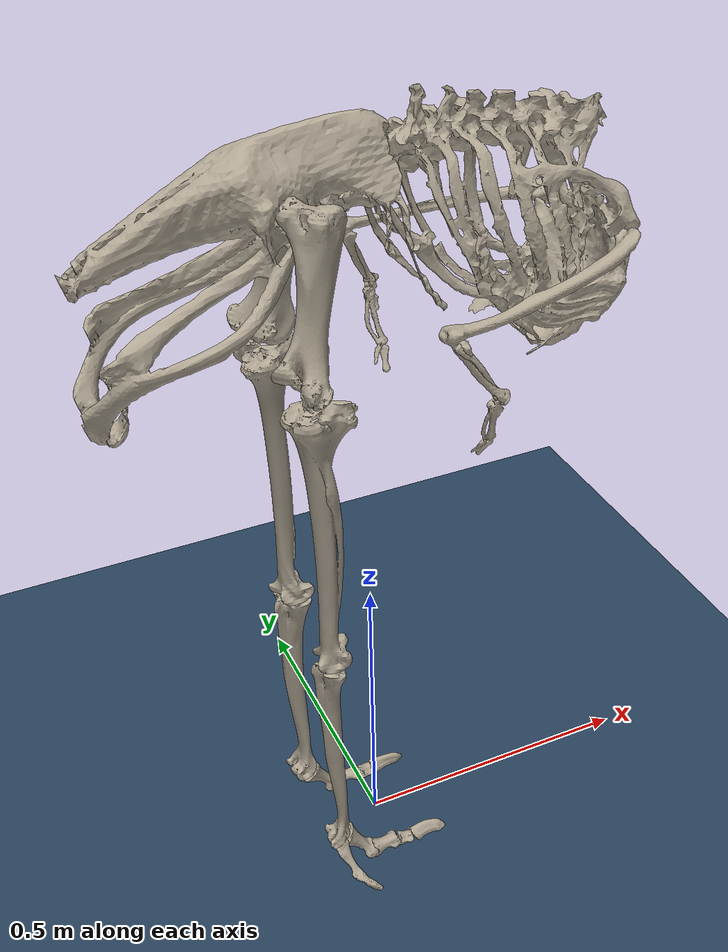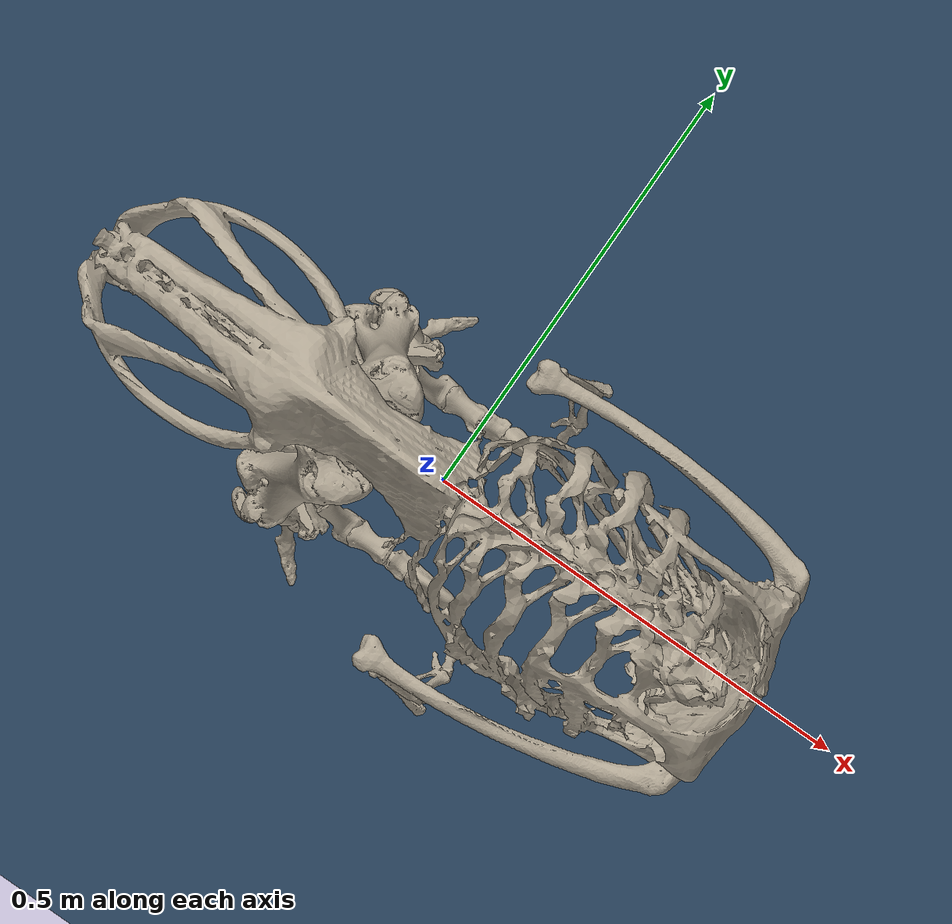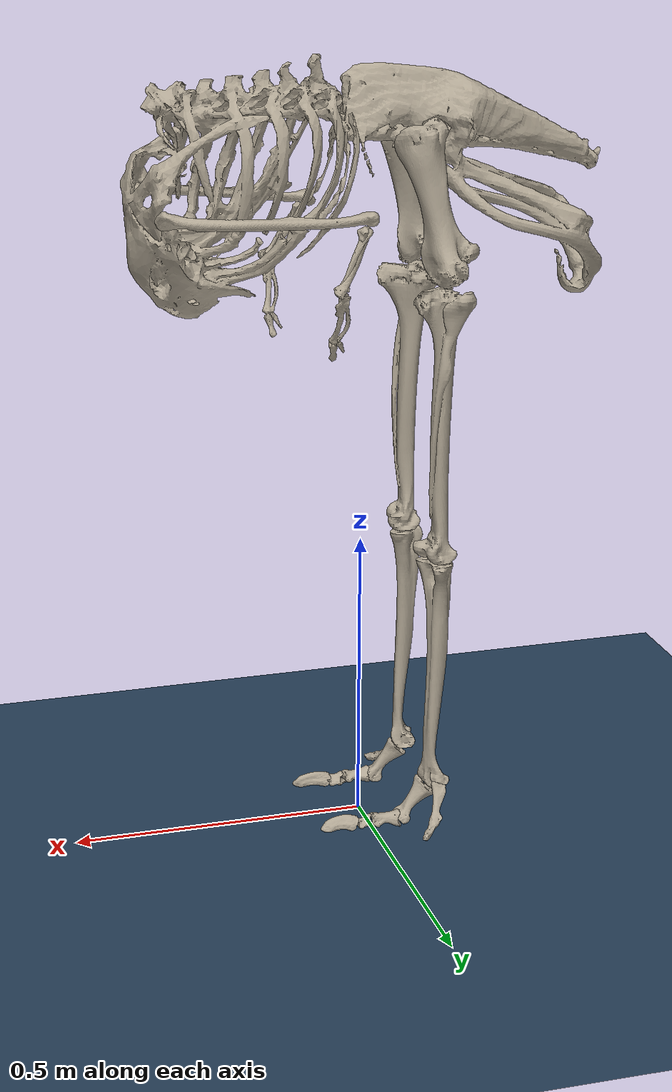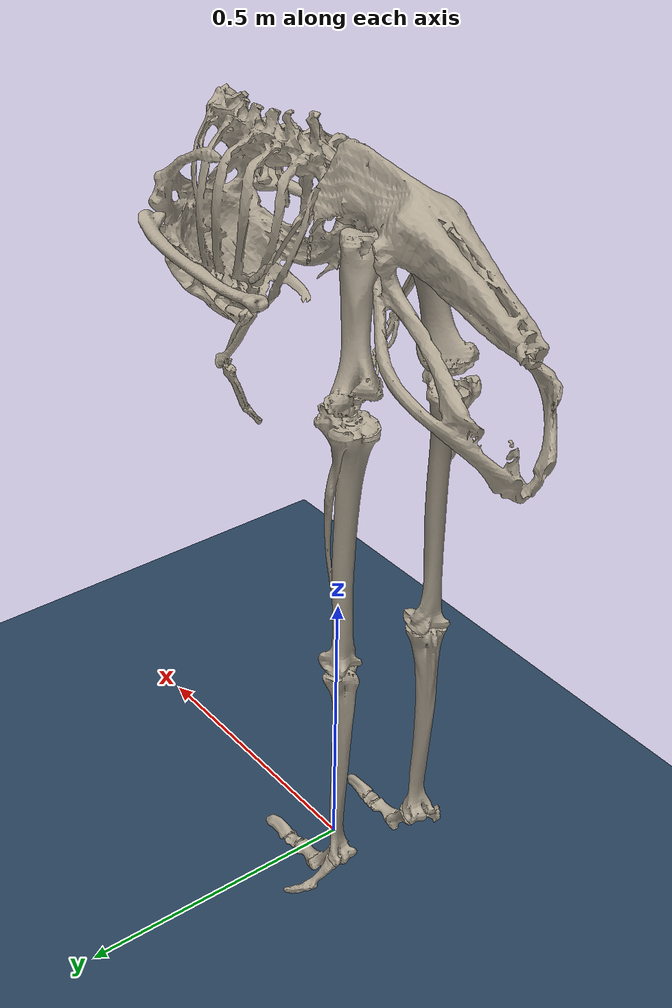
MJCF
<mujoco model="ostrich_legs_torque scene">
  <include file="ostrich_legs_torque.xml"/>

  <visual>
    <headlight ambient="0.4 0.4 0.4" diffuse="0.8 0.8 0.8" specular="0.1 0.1 0.1"/>
    <rgba haze="0.15 0.25 0.35 1"/>
    <global azimuth="140" elevation="-20" offwidth="3840" offheight="2160"/>
    <quality shadowsize="8192" offsamples="24"/>
    <map znear="0.01"/>
  </visual>

  <asset>
    <texture type="skybox" builtin="gradient" rgb1="0.3 0.5 0.7" rgb2="0 0 0" width="512" height="512"/>
    <texture type="2d" name="groundplane" builtin="checker" mark="edge" rgb1="0.2 0.3 0.4" rgb2="0.1 0.2 0.3"
      markrgb="0.8 0.8 0.8" width="300" height="300"/>
    <material name="groundplane" texture="groundplane" texuniform="true" texrepeat="5 5" reflectance="0.2"/>
  </asset>

  <worldbody>
    <light pos="0 0 4" dir="0 0 -1" directional="true"/>
    <geom name="floor" type="plane" size="0 0 0.05" material="groundplane" contype="1" conaffinity="1" friction="0.7"
      solref="0.015 1" solimp="0.95 0.99 0.003"/>
  </worldbody>
</mujoco>

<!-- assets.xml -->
<mujoco>
  <asset>
    <material name="bone" reflectance="1" shininess="0" specular="0" rgba="0.68 0.64 0.57 1"/>
    <mesh name="pelvis" file="pelvis.stl"/>
    <mesh name="r_femur" file="r_femur.stl"/>
    <mesh name="r_tibiotarsus" file="r_tibiotarsus.stl"/>
    <mesh name="r_tarsometatarsus" file="r_tarsometatarsus.stl"/>
    <mesh name="r_phalanx1" file="r_phalanx1.stl"/>
    <mesh name="r_phalanx2" file="r_phalanx2.stl"/>
    <mesh name="r_phalanx3" file="r_phalanx3.stl"/>
    <mesh name="r_phalanx4" file="r_phalanx4.stl"/>
    <mesh name="r_thumb" file="r_thumb.stl"/>
    <mesh name="l_femur" file="l_femur.stl"/>
    <mesh name="l_tibiotarsus" file="l_tibiotarsus.stl"/>
    <mesh name="l_tarsometatarsus" file="l_tarsometatarsus.stl"/>
    <mesh name="l_phalanx1" file="l_phalanx1.stl"/>
    <mesh name="l_phalanx2" file="l_phalanx2.stl"/>
    <mesh name="l_phalanx3" file="l_phalanx3.stl"/>
    <mesh name="l_phalanx4" file="l_phalanx4.stl"/>
    <mesh name="l_thumb" file="l_thumb.stl"/>
    <mesh name="ribcage" file="ribcage.stl"/>
    <mesh name="vertebra1" file="vertebra1.stl"/>
    <mesh name="vertebra2" file="vertebra2.stl"/>
    <mesh name="vertebra3" file="vertebra3.stl"/>
    <mesh name="vertebra4" file="vertebra4.stl"/>
    <mesh name="vertebra5" file="vertebra5.stl"/>
    <mesh name="vertebra6" file="vertebra6.stl"/>
    <mesh name="vertebra7" file="vertebra7.stl"/>
    <mesh name="vertebra8" file="vertebra8.stl"/>
    <mesh name="vertebra9" file="vertebra9.stl"/>
    <mesh name="vertebra10" file="vertebra10.stl"/>
    <mesh name="vertebra11" file="vertebra11.stl"/>
    <mesh name="vertebra12" file="vertebra12.stl"/>
    <mesh name="vertebra13" file="vertebra13.stl"/>
    <mesh name="vertebra14" file="vertebra14.stl"/>
    <mesh name="vertebra15" file="vertebra15.stl"/>
    <mesh name="vertebra16" file="vertebra16.stl"/>
    <mesh name="vertebra17" file="vertebra17.stl"/>
    <mesh name="head" file="head.stl"/>
    <mesh name="r_humerus" file="r_humerus.stl"/>
    <mesh name="r_ulna" file="r_ulna.stl"/>
    <mesh name="r_radius" file="r_radius.stl"/>
    <mesh name="r_hand" file="r_hand.stl"/>
    <mesh name="l_humerus" file="l_humerus.stl"/>
    <mesh name="l_ulna" file="l_ulna.stl"/>
    <mesh name="l_radius" file="l_radius.stl"/>
    <mesh name="l_hand" file="l_hand.stl"/>
  </asset>
</mujoco>

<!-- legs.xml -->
<mujoco>
  <geom name="r_ilfb_hip" class="wrapping" size="0.095 0.25" pos="-0.05809 -0.0736 0.09738"
    quat="0.7788 0.4197 0.4354 0.1669"/>
  <geom name="l_ilfb_hip" class="wrapping" size="0.095 0.25" pos="-0.05809 0.0508 0.09738"
    quat="0.4197 0.7788 -0.1669 -0.4354"/>
  <geom name="r_pifm_l_hip" group="4" class="wrapping" size="0.19 0.25" pos="-0.1512 -0.1114 0.2303"
    quat="0.6167 0.7451 0.1913 -0.1673"/>
  <geom name="l_pifm_l_hip" group="4" class="wrapping" size="0.19 0.25" pos="-0.1512 0.0886 0.2303"
    quat="0.7451 0.6167 0.1673 -0.1913"/>
  <geom name="r_cfp_hip" class="wrapping" size="0.09 0.25" pos="-0.1675 -0.151 0.1893"
    quat="0.7276 0.6152 -0.1991 0.2291"/>
  <geom name="l_cfp_hip" class="wrapping" size="0.09 0.25" pos="-0.1675 0.1282 0.1893"
    quat="0.6151 0.7276 -0.2291 0.1991"/>
  <geom name="r_il_hip" class="wrapping" group="5" size="0.1 0.25" pos="-0.09218 -0.0914 0.09117"
    quat="-0.6082 0.3607 -0.3608 0.6081"/>
  <geom name="l_il_hip" class="wrapping" group="5" size="0.1 0.25" pos="-0.09218 0.0686 0.09117"
    quat="-0.6082 0.3607 -0.3608 0.6081"/>
  <geom name="pelvis" pos="-0.1144 -0.0114 0.136" quat="0.7422 0.6228 -0.1895 0.159" mesh="pelvis"/>
  <site name="root" pos="-0.1144 -0.0114 0.136"/>
  <site name="r_il_hip" group="5" pos="-0.1736 -0.3114 0.2176"/>
  <site name="l_il_hip" group="5" pos="-0.1736 0.2886 0.2176"/>
  <site name="r_ilfb_hip" group="5" pos="-0.1127 -0.1569 0.1063"/>
  <site name="r_cfp_hip" group="5" pos="-0.1081 -0.1654 -0.08847"/>
  <site name="l_ilfb_hip" group="5" pos="-0.1127 0.1341 0.1063"/>
  <site name="l_cfp_hip" group="5" pos="-0.1081 0.1426 -0.08846"/>
  <site name="r_ic-p1" pos="0.01568 -0.03187 0.2131"/>
  <site name="r_ila-p1" pos="-0.2215 -0.05415 0.1798"/>
  <site name="r_ilp-p1" pos="-0.3023 -0.04251 0.1352"/>
  <site name="r_amb1-p1" pos="-0.06096 -0.03867 0.09751"/>
  <site name="r_amb2-p1" pos="-0.04218 -0.0485 0.1721"/>
  <site name="r_ilfba-p1" pos="-0.2446 -0.04765 0.1424"/>
  <site name="r_ilfba-p2" pos="-0.2183 -0.0774 0.1344"/>
  <site name="r_ilfbp-p1" pos="-0.3241 -0.04243 0.1109"/>
  <site name="r_ilfbp-p2" pos="-0.287 -0.07631 0.1011"/>
  <site name="r_ife-p1" pos="-0.1724 -0.07254 0.185"/>
  <site name="r_itca-p1" pos="-0.06102 -0.03375 0.2115"/>
  <site name="r_itca-p2" pos="-0.09728 -0.05096 0.206"/>
  <site name="r_itcp-p1" pos="-0.1032 -0.03646 0.2142"/>
  <site name="r_itcp-p2" pos="-0.1187 -0.05237 0.2069"/>
  <site name="r_itcr-p1" pos="-0.0408 -0.03784 0.2043"/>
  <site name="r_itm-p1" pos="-0.0971 -0.04431 0.1885"/>
  <site name="r_itm-p2" pos="-0.09363 -0.06055 0.1898"/>
  <site name="r_ifi-p1" pos="-0.07613 -0.03691 0.1983"/>
  <site name="r_ifi-p2" pos="-0.07206 -0.05708 0.1458"/>
  <site name="r_fclp-p1" pos="-0.3836 -0.04171 0.07164"/>
  <site name="r_fclp-p2" pos="-0.3702 -0.06864 0.05611"/>
  <site name="r_fcm-p1" pos="-0.3544 -0.08104 -0.00287"/>
  <site name="r_pifm+l-p1" pos="-0.2344 -0.05796 0.04223"/>
  <site name="r_om-p1" pos="-0.2272 -0.06931 0.017"/>
  <site name="r_om-p2" pos="-0.133 -0.03939 0.07945"/>
  <site name="r_om-p3" pos="-0.1261 -0.04551 0.08951"/>
  <site name="r_isf-p1" pos="-0.1843 -0.04959 0.09013"/>
  <site name="r_cfp-p1" pos="-0.3813 -0.03673 0.06965"/>
  <site name="l_ic-p1" pos="0.01568 0.009072 0.2131"/>
  <site name="l_ila-p1" pos="-0.2215 0.03135 0.1798"/>
  <site name="l_ilp-p1" pos="-0.3023 0.01971 0.1352"/>
  <site name="l_amb1-p1" pos="-0.06096 0.01587 0.09751"/>
  <site name="l_amb2-p1" pos="-0.04218 0.0257 0.1721"/>
  <site name="l_ilfba-p1" pos="-0.2446 0.02485 0.1424"/>
  <site name="l_ilfba-p2" pos="-0.2183 0.0546 0.1344"/>
  <site name="l_ilfbp-p1" pos="-0.3241 0.01963 0.1109"/>
  <site name="l_ilfbp-p2" pos="-0.287 0.05351 0.1011"/>
  <site name="l_ife-p1" pos="-0.1724 0.04974 0.185"/>
  <site name="l_itca-p1" pos="-0.06102 0.01095 0.2115"/>
  <site name="l_itca-p2" pos="-0.09728 0.02816 0.206"/>
  <site name="l_itcp-p1" pos="-0.1032 0.01366 0.2142"/>
  <site name="l_itcp-p2" pos="-0.1187 0.02957 0.2069"/>
  <site name="l_itcr-p1" pos="-0.0408 0.01504 0.2043"/>
  <site name="l_itm-p1" pos="-0.0971 0.02151 0.1885"/>
  <site name="l_itm-p2" pos="-0.09363 0.03775 0.1899"/>
  <site name="l_ifi-p1" pos="-0.07613 0.01411 0.1983"/>
  <site name="l_ifi-p2" pos="-0.07206 0.03428 0.1458"/>
  <site name="l_fclp-p1" pos="-0.3836 0.01891 0.07164"/>
  <site name="l_fclp-p2" pos="-0.3702 0.04584 0.05611"/>
  <site name="l_fcm-p1" pos="-0.3544 0.05824 -0.002868"/>
  <site name="l_pifm+l-p1" pos="-0.2344 0.03516 0.04223"/>
  <site name="l_om-p1" pos="-0.2272 0.04651 0.017"/>
  <site name="l_om-p2" pos="-0.133 0.01659 0.07945"/>
  <site name="l_om-p3" pos="-0.1261 0.02271 0.08951"/>
  <site name="l_isf-p1" pos="-0.1843 0.02679 0.09013"/>
  <site name="l_cfp-p1" pos="-0.3813 0.01393 0.06965"/>
  <!-- right leg -->
  <body name="r_femur" pos="-0.1144 -0.0469 0.136">
    <inertial pos="0.008385 -0.03406 -0.1093" quat="0.1318 0.639 -0.7575 0.02286" mass="7.833844"
      diaginertia="0.04598 0.0452 0.003406"/>
    <joint name="r_hip_x" pos="0 0 0" axis="1 0 0" range="-0.5 0.2"/>
    <joint name="r_hip_y" pos="0 0 0" axis="0 1 0" range="-1.5 0.3"/>
    <joint name="r_hip_z" pos="0 0 0" axis="0 0 1" range="-1 0.6"/>
    <geom name="r_itc_itm_hip" class="wrapping" size="0.02 0.25" pos="0.0086 0.0067 -0.0017"
      quat="0.787 0.593 0.1359 0.1024"/>
    <geom name="r_itcr_hip" class="wrapping" size="0.02 0.25" pos="0.0395 0.003401 -0.0379"
      quat="0.787 0.593 0.1359 0.1024"/>
    <geom name="r_itcr_femur" class="wrapping" size="0.055 0.25" pos="0.0086 -0.0181 -0.0882"
      quat="0.1372 0.9758 0.1686 -0.02369"/>
    <geom name="r_deep_knee_flexors" class="wrapping" size="0.015 0.1" pos="-0.0197 -0.0799 -0.2006"
      quat="0.4657 0.7997 0.3003 0.2311"/>
    <geom name="r_femur" class="leg" quat="0.7071 0.7071 4.66e-08 2.427e-06" mesh="r_femur"/>
    <site name="r_itc_itm_hip" group="5" pos="0.1028 0.03895 -0.01095"/>
    <site name="r_itcr_hip" group="5" pos="0.1337 0.03565 -0.04714"/>
    <site name="r_ic-p2" pos="0.04007 0.0284 -0.2151"/>
    <site name="r_ila-p2" pos="0.04286 -0.08141 -0.166"/>
    <site name="r_ilp-p2" pos="0.0362 -0.107 -0.1659"/>
    <site name="r_fmtl-p1" pos="0.02641 -0.05062 -0.08096"/>
    <site name="r_fmtl-p2" pos="0.0409 -0.06183 -0.1664"/>
    <site name="r_fmtim-p1" pos="0.02044 -0.01269 -0.08193"/>
    <site name="r_fmtim-p2" pos="0.02678 2.659e-06 -0.1872"/>
    <site name="r_fmtm-p1" pos="-0.01325 -0.03101 -0.1237"/>
    <site name="r_fmtm-p2" pos="-0.01794 0.0006028 -0.2059"/>
    <site name="r_amb1-p2" pos="-0.03492 -0.01377 -0.2097"/>
    <site name="r_amb2-p2" pos="0.03086 0.01991 -0.1818"/>
    <site name="r_ife-p2" pos="0.04201 -0.0387 -0.0239"/>
    <site name="r_itca-p3" pos="0.07284 -0.0092 -0.01077"/>
    <site name="r_itca-p4" pos="0.05228 -0.03164 -0.01892"/>
    <site name="r_itcp-p3" pos="0.07366 -0.00802 -0.00221"/>
    <site name="r_itcp-p4" pos="0.0509 -0.03433 -0.01365"/>
    <site name="r_itcr-p2" pos="0.06629 -0.01056 -0.0384"/>
    <site name="r_itcr-p3" pos="0.05231 -0.0355 -0.03508"/>
    <site name="r_itm-p3" pos="0.07469 -0.004299 -0.02248"/>
    <site name="r_itm-p4" pos="0.05276 -0.0319 -0.02598"/>
    <site name="r_ifi-p3" pos="-0.00619 -0.01879 -0.05886"/>
    <site name="r_fclp-p3" pos="-0.0853 -0.1429 -0.1337"/>
    <site name="r_pifm+l-p2" pos="-0.01522 -0.05472 -0.1491"/>
    <site name="r_om-p4" pos="0.02169 -0.04932 0.005649"/>
    <site name="r_om-p5" pos="0.04177 -0.03871 0.00454"/>
    <site name="r_isf-p2" pos="0.01832 -0.05298 -0.009141"/>
    <site name="r_isf-p3" pos="0.04091 -0.04254 -0.01021"/>
    <site name="r_cfp-p2" pos="0.00346 -0.0494 -0.07167"/>
    <site name="r_gl-p1" pos="0.01405 -0.06649 -0.1919"/>
    <site name="r_gl-p2" pos="0.01349 -0.09997 -0.201"/>
    <site name="r_gim-p1" pos="-0.02829 -0.04962 -0.1587"/>
    <site name="r_gim-p2" pos="-0.04749 -0.06308 -0.189"/>
    <site name="r_tcf-p1" pos="0.001181 -0.04849 -0.2374"/>
    <site name="r_fhl-p1" pos="-0.008509 -0.0687 -0.1765"/>
    <site name="r_fhl-p2" pos="-0.01509 -0.07434 -0.1837"/>
    <site name="r_fhl-p3" pos="-0.02648 -0.07857 -0.1795"/>
    <site name="r_fpd3-p1" pos="-0.01774 -0.06824 -0.1793"/>
    <site name="r_fpd3-p2" pos="-0.025 -0.07519 -0.1793"/>
    <site name="r_fpd4-p1" pos="-0.01026 -0.07342 -0.1749"/>
    <site name="r_fpd4-p2" pos="-0.02017 -0.07668 -0.1823"/>
    <site name="r_fpd4-p3" pos="-0.02493 -0.07929 -0.1793"/>
    <site name="r_fl-p1" pos="0.02539 -0.09404 -0.2879"/>
    <body name="r_tibiotarsus" pos="9.772e-07 -0.0543 -0.2338">
      <inertial pos="0.001886 -0.002379 -0.2124" quat="-0.01647 0.6978 -0.7161 0.006417" mass="5.30291"
        diaginertia="0.1206 0.1205 0.002178"/>
      <joint name="r_knee_y" pos="0 0 0" axis="0 1 0" range="0 2"/>
      <joint name="r_knee_z" pos="0 0 0" axis="0 0 1" range="-0.5 0.5"/>
      <geom name="r_fmtim_fmtl_knee" class="wrapping" size="0.038 0.25" pos="-0.0014 -0.0093 0.0103"
        quat="0.654 0.654 -0.2688 0.2688"/>
      <geom name="r_gastroc_ankle" class="wrapping" size="0.035 0.075" pos="-0.005799 0.009006 -0.4435"
        quat="0.7071 0.7071 4.66e-08 2.427e-06"/>
      <geom name="r_fps_deep_ankle" class="wrapping" size="0.03 0.1" pos="0.003102 -0.008994 -0.4537"
        quat="0.6408 0.683 -0.2988 0.183"/>
      <geom name="r_fdl_fhl_ankle" class="wrapping" size="0.03 0.25" pos="-0.001398 -9.384e-05 -0.4501"
        quat="0.6645 0.6645 -0.2418 0.2418"/>
      <geom name="r_ambd_knee" class="wrapping" size="0.038 0.05" pos="0.025 0.0012 0.0126"
        quat="0.7071 0.7071 4.66e-08 2.427e-06"/>
      <geom name="r_ic_knee" class="wrapping" size="0.03 0.25" pos="-0.0143 0.0054 0.0098"
        quat="0.6409 0.6409 0.2988 0.2988"/>
      <geom name="r_edl_tc_ankle" class="wrapping" size="0.02 0.05" pos="0.0111 -0.0008937 -0.453"
        quat="0.68 0.7207 -0.09434 -0.09602"/>
      <geom name="r_tibiotarsus" class="leg" quat="0.7071 0.7071 4.66e-08 2.427e-06" mesh="r_tibiotarsus"/>
      <site name="r_fmtim_fmtl_knee" group="5" pos="0.06969 -0.009301 0.08063"/>
      <site name="r_gastroc_ankle" group="5" pos="-0.1058 0.009006 -0.4435"/>
      <site name="r_fps_deep_ankle" group="5" pos="-0.07234 0.00837 -0.517"/>
      <site name="r_fdl_fhl_ankle" group="5" pos="-0.078 -9.322e-05 -0.5144"/>
      <site name="r_ambd_knee" group="5" pos="0.125 0.0012 0.0126"/>
      <site name="r_ic_knee" group="5" pos="0.04998 0.082 0.009801"/>
      <site name="r_edl_tc_ankle" group="5" pos="0.1075 -0.02755 -0.454"/>
      <site name="r_ic-p3" pos="0.00922 0.01565 -0.01128"/>
      <site name="r_ila-p3" pos="0.0144 -0.02866 0.01634"/>
      <site name="r_ila-p4" pos="0.04358 -0.01832 -0.00834"/>
      <site name="r_ilp-p3" pos="0.02376 -0.041 0.0007695"/>
      <site name="r_ilp-p4" pos="0.04388 -0.02347 -0.01463"/>
      <site name="r_fmtl-p3" pos="0.03878 -0.02914 -0.02884"/>
      <site name="r_fmtim-p3" pos="0.052 -0.011 -0.014"/>
      <site name="r_fmtm-p3" pos="0.01038 0.01091 -0.01164"/>
      <site name="r_amb1-p3" pos="0.00364 0.01766 -0.01357"/>
      <site name="r_amb2-p3" pos="0.08447 -0.00453 0.00169"/>
      <site name="r_amb2-p4" pos="0.0412 -0.02664 -0.08594"/>
      <site name="r_amb2-p5" pos="0.00575 -0.0295 -0.1057"/>
      <site name="r_ilfba-p3" pos="-0.001849 -0.0336 -0.1406"/>
      <site name="r_ilfbp-p3" pos="-0.001849 -0.0336 -0.1406"/>
      <site name="r_fclp-p4" pos="-0.01369 -0.0146 -0.1197"/>
      <site name="r_fcm-p4" pos="-0.01611 -0.007458 -0.1202"/>
      <site name="r_gl-p3" pos="-0.001966 -0.07206 -0.02661"/>
      <site name="r_gl-p4" pos="-0.01765 -0.03604 -0.1598"/>
      <site name="r_gl-p5" pos="-0.02582 -0.001835 -0.3675"/>
      <site name="r_gim-p3" pos="-0.01754 -0.03541 -0.159"/>
      <site name="r_gim-p4" pos="-0.02523 -0.001275 -0.3667"/>
      <site name="r_gm-p1" pos="0.05348 0.03327 0.0342"/>
      <site name="r_gm-p2" pos="0.02616 0.03254 -0.09808"/>
      <site name="r_gm-p3" pos="-0.02631 0.004065 -0.3665"/>
      <site name="r_edl-p1" pos="0.01628 -0.006038 -0.1065"/>
      <site name="r_edl-p2" pos="0.02397 0.001504 -0.2864"/>
      <site name="r_edl-p3" pos="0.0153 0.001006 -0.419"/>
      <site name="r_tcf-p2" pos="0.01874 -0.02283 -0.02663"/>
      <site name="r_tcf-p3" pos="0.02312 -0.01127 -0.1552"/>
      <site name="r_tcf-p4" pos="0.02191 0.003006 -0.403"/>
      <site name="r_tct-p1" pos="0.0466 -0.01982 -0.04363"/>
      <site name="r_tct-p2" pos="0.02331 -0.008998 -0.155"/>
      <site name="r_tct-p3" pos="0.0212 0.006006 -0.402"/>
      <site name="r_fdl-p1" pos="-0.03149 -0.01282 -0.04311"/>
      <site name="r_fdl-p2" pos="-0.01645 -0.01218 -0.1445"/>
      <site name="r_fdl-p3" pos="-0.01492 -0.006225 -0.379"/>
      <site name="r_fhl-p4" pos="-0.01536 -0.005748 -0.1428"/>
      <site name="r_fhl-p5" pos="-0.01053 0.0002351 -0.3785"/>
      <site name="r_fp_pd3-p1" pos="-0.04937 -0.02582 0.004319"/>
      <site name="r_fp_pd3-p2" pos="-0.03999 -0.02865 -0.0713"/>
      <site name="r_fp_pd3-p3" pos="-0.01648 -0.005255 -0.3602"/>
      <site name="r_fp_pd3-p4" pos="-0.02482 0.007786 -0.4238"/>
      <site name="r_fpd3-p4" pos="-0.036 -0.01744 -0.11"/>
      <site name="r_fpd3-p5" pos="-0.02065 -0.002585 -0.3947"/>
      <site name="r_fpd3-p6" pos="-0.02272 0.0001058 -0.4305"/>
      <site name="r_fpd4-p4" pos="-0.0112 -0.02737 -0.1465"/>
      <site name="r_fpd4-p5" pos="-0.01799 -0.005835 -0.3968"/>
      <site name="r_fpd4-p6" pos="-0.0204 -0.003454 -0.4257"/>
      <site name="r_fl-p2" pos="0.04252 -0.04356 -0.08611"/>
      <site name="r_fl-p3" pos="0.01879 -0.03632 -0.2251"/>
      <site name="r_fl-p4" pos="0.01022 -0.02305 -0.3995"/>
      <site name="r_fl-p5" pos="-0.004998 -0.03351 -0.4561"/>
      <body name="r_tarsometatarsus" pos="1.488e-06 6.056e-06 -0.442">
        <inertial pos="0.002975 0.002176 -0.2295" quat="-0.003585 0.974 -0.2265 -0.002015" mass="1.037683"
          diaginertia="0.01956 0.01951 0.0002057"/>
        <joint name="r_ankle_y" axis="0 1 0" range="-2.3 0"/>
        <geom name="r_toe_flexors_deep" class="wrapping" size="0.023 0.05" pos="0.002501 0.002406 -0.4319"
          quat="0.7229 0.6807 -0.08457 -0.08303"/>
        <geom name="r_fpd4_toe" class="wrapping" size="0.023 0.05" pos="0.0002015 -0.002494 -0.4326"
          quat="0.6922 0.6922 -0.1442 -0.1442"/>
        <geom name="r_edl_toes" class="wrapping" size="0.023 0.05" pos="0.002901 0.01521 -0.4312"
          quat="0.7143 0.6994 -0.02092 -0.01218"/>
        <geom name="r_toe_flexors_superficial" class="wrapping" size="0.023 0.05" pos="-0.001999 -0.0001941 -0.4296"
          quat="0.7016 0.7105 -0.02848 -0.04751"/>
        <geom name="r_tarsometatarsus" class="leg" quat="0.7071 0.7071 4.66e-08 2.427e-06" mesh="r_tarsometatarsus"/>
        <site name="r_toe_flexors_deep" group="5" pos="-0.1947 0.02592 -0.3328"/>
        <site name="r_fpd4_toe" group="5" pos="-0.1915 0.03745 -0.4326"/>
        <site name="r_edl_toes" group="5" pos="0.1028 0.01054 -0.4299"/>
        <site name="r_toe_flexors_superficial" group="5" pos="-0.2 0.01052 -0.3"/>
        <site name="r_gl-p6" pos="-0.0359 0.002661 -0.05455"/>
        <site name="r_gl-p7" pos="-0.01602 -0.001428 -0.1625"/>
        <site name="r_gim-p5" pos="-0.03728 0.006011 -0.05387"/>
        <site name="r_gim-p6" pos="-0.01663 0.001102 -0.1623"/>
        <site name="r_gm-p4" pos="-0.03806 0.008861 -0.05337"/>
        <site name="r_gm-p5" pos="-0.0149 0.004592 -0.1622"/>
        <site name="r_edl-p4" pos="0.019 -0.001949 -0.034"/>
        <site name="r_edl-p5" pos="0.01787 -0.001639 -0.07374"/>
        <site name="r_edl-p6" pos="0.02376 0.001024 -0.3198"/>
        <site name="r_edl-p7" pos="0.02491 0.002475 -0.3725"/>
        <site name="r_tcf-p5" pos="0.03272 0.01029 -0.04332"/>
        <site name="r_tcf-p6" pos="0.02092 0.009801 -0.09836"/>
        <site name="r_tct-p4" pos="0.03329 0.01319 -0.04262"/>
        <site name="r_tct-p5" pos="0.02082 0.01253 -0.09834"/>
        <site name="r_fdl-p4" pos="-0.0212 -0.01152 -0.0393"/>
        <site name="r_fdl-p5" pos="-0.01588 -0.007617 -0.2353"/>
        <site name="r_fdl-p6" pos="-0.001729 -0.0002247 -0.3865"/>
        <site name="r_fdl-p7" pos="-0.007408 0.005006 -0.4068"/>
        <site name="r_fhl-p6" pos="-0.02219 -0.008969 -0.03922"/>
        <site name="r_fhl-p7" pos="-0.01661 -0.003807 -0.2355"/>
        <site name="r_fhl-p8" pos="-0.003479 0.004055 -0.3865"/>
        <site name="r_fhl-p9" pos="-0.007228 0.006118 -0.407"/>
        <site name="r_fp_pd3-p5" pos="-0.02758 -0.002199 -0.04894"/>
        <site name="r_fp_pd3-p6" pos="-0.01949 -0.001087 -0.2373"/>
        <site name="r_fp_pd3-p7" pos="-0.005729 0.007725 -0.3969"/>
        <site name="r_fp_pd3-p8" pos="-0.017 0.007005 -0.405"/>
        <site name="r_fpd3-p7" pos="-0.02736 0.01532 -0.04498"/>
        <site name="r_fpd3-p8" pos="-0.02518 0.01601 -0.08081"/>
        <site name="r_fpd3-p9" pos="-0.02121 0.008293 -0.2383"/>
        <site name="r_fpd3-p10" pos="-0.004179 0.01364 -0.3989"/>
        <site name="r_fpd3-p11" pos="-0.0161 0.01178 -0.405"/>
        <site name="r_fpd4-p7" pos="-0.02945 -0.009419 -0.04521"/>
        <site name="r_fpd4-p8" pos="-0.02588 -0.004849 -0.08225"/>
        <site name="r_fpd4-p9" pos="-0.02009 -0.003687 -0.237"/>
        <site name="r_fpd4-p10" pos="-0.002959 -0.005694 -0.4004"/>
        <site name="r_fl-p6" pos="-0.00854 -0.03128 -0.03975"/>
        <site name="r_fl-p7" pos="-0.01516 -0.01417 -0.09679"/>
        <site name="r_fl-p8" pos="-0.02342 0.009802 -0.1306"/>
        <site name="r_fl-p9" pos="-0.0218 0.002563 -0.2375"/>
        <site name="r_fl-p10" pos="-0.005559 0.01117 -0.3986"/>
        <body name="r_pes" pos="1.434e-06 5.837e-06 -0.426">
          <inertial pos="0.06599 -0.005481 -0.05537" quat="-0.1785 0.7799 -0.1385 0.5837" mass="0.582115"
            diaginertia="0.002102 0.001931 0.0003652"/>
          <joint name="r_mtp_y" pos="0 0 0" axis="0 1 0" range="-0.3 2"/>
          <geom name="r_phalanx1" class="leg" quat="0.6513 0.6513 0.2754 -0.2754" mesh="r_phalanx1"/>
          <geom name="r_phalanx2" class="leg" pos="-0.035 7.682e-07 -0.065" quat="0.7071 0.7071 4.66e-08 2.427e-06"
            mesh="r_phalanx2"/>
          <geom name="r_phalanx3" class="leg" pos="-0.035 7.682e-07 -0.065" quat="0.7071 0.7071 4.66e-08 2.427e-06"
            mesh="r_phalanx3"/>
          <geom name="r_phalanx4" class="leg" pos="-0.04 7.507e-07 -0.065" quat="0.7071 0.7071 4.66e-08 2.427e-06"
            mesh="r_phalanx4"/>
          <geom name="r_thumb" class="leg" quat="0.5836 0.5836 0.3993 -0.3993" mesh="r_thumb"/>
          <site name="r_fpd4-p12" pos="-0.0074 -0.02453 -0.02829"/>
          <site name="r_fpd4-p13" pos="0.00344 -0.03246 -0.04105"/>
          <site name="r_fpd4-p14" pos="0.01464 -0.04732 -0.07"/>
          <site name="r_fpd4-p15" pos="0.04209 -0.07435 -0.08281"/>
          <site name="r_edl-p8" pos="0.02633 -0.00852 0.02126"/>
          <site name="r_edl-p9" pos="0.05763 0.006261 -0.05815"/>
          <site name="r_edl-p10" pos="0.1071 0.007131 -0.06189"/>
          <site name="r_edl-p11" pos="0.1188 0.003981 -0.06185"/>
          <site name="r_fdl-p8" pos="0.02411 -0.003759 -0.055"/>
          <site name="r_fdl-p9" pos="0.04896 -0.0008987 -0.0827"/>
          <site name="r_fdl-p10" pos="0.07061 -0.0008885 -0.08751"/>
          <site name="r_fdl-p11" pos="0.1118 0.001892 -0.08555"/>
          <site name="r_fdl-p12" pos="0.1509 0.002532 -0.08637"/>
          <site name="r_fdl-p13" pos="0.1845 0.002752 -0.07934"/>
          <site name="r_fhl-p10" pos="0.02411 0.008721 -0.0523"/>
          <site name="r_fhl-p11" pos="0.04854 0.002671 -0.08336"/>
          <site name="r_fhl-p12" pos="0.07094 0.004031 -0.08795"/>
          <site name="r_fhl-p13" pos="0.112 0.002422 -0.08597"/>
          <site name="r_fhl-p14" pos="0.1513 0.0002617 -0.08648"/>
          <site name="r_fhl-p15" pos="0.1857 -4.824e-05 -0.08132"/>
          <site name="r_fp_pd3-p9" pos="0.02633 0.007961 -0.05041"/>
          <site name="r_fp_pd3-p10" pos="0.05383 0.001141 -0.08533"/>
          <site name="r_fp_pd3-p11" pos="0.0672 0.0001914 -0.08555"/>
          <site name="r_fp_pd3-p12" pos="0.111 -0.002498 -0.08313"/>
          <site name="r_fp_pd3-p13" pos="0.1396 -0.001948 -0.08303"/>
          <site name="r_fp_pd3-p14" pos="0.1547 -0.001478 -0.0817"/>
          <site name="r_fpd3-p12" pos="0.02411 0.01366 -0.05166"/>
          <site name="r_fpd3-p13" pos="0.05338 0.006601 -0.08749"/>
          <site name="r_fpd3-p14" pos="0.06833 0.005141 -0.08763"/>
          <site name="r_fpd3-p15" pos="0.1113 0.001922 -0.08342"/>
          <site name="r_fl-p12" pos="0.02411 0.01108 -0.055"/>
          <site name="r_fl-p13" pos="0.08668 0.003311 -0.08738"/>
          <site name="r_fl-p14" pos="0.1029 0.003132 -0.0861"/>
          <site name="r_fl-p15" pos="0.1459 -0.0007383 -0.08404"/>
        </body>
      </body>
    </body>
  </body>
  <!-- left leg -->
  <body name="l_femur" pos="-0.1144 0.0241 0.136">
    <inertial pos="0.008384 0.03406 -0.1093" quat="-0.02287 0.7575 -0.639 -0.1318" mass="7.833844"
      diaginertia="0.04598 0.0452 0.003406"/>
    <joint name="l_hip_x" pos="0 0 0" axis="1 0 0" range="-0.2 0.5"/>
    <joint name="l_hip_y" pos="0 0 0" axis="0 1 0" range="-1.5 0.3"/>
    <joint name="l_hip_z" pos="0 0 0" axis="0 0 1" range="-0.6 1"/>
    <geom name="l_itc_itm_hip" class="wrapping" size="0.02 0.25" pos="0.0086 -0.0067 -0.0017"
      quat="0.593 0.787 -0.1024 -0.1359"/>
    <geom name="l_itcr_hip" class="wrapping" size="0.02 0.25" pos="0.0395 -0.003399 -0.0379"
      quat="0.593 0.787 -0.1024 -0.1359"/>
    <geom name="l_itcr_femur" class="wrapping" size="0.055 0.25" pos="0.0086 0.0181 -0.0882"
      quat="0.9758 0.1372 0.02369 -0.1686"/>
    <geom name="l_deep_knee_flexors" class="wrapping" size="0.015 0.1" pos="-0.0197 0.0799 -0.2006"
      quat="0.7997 0.4657 -0.2311 -0.3003"/>
    <geom name="l_femur" class="leg" quat="0.7071 0.7071 4.66e-08 2.427e-06" mesh="l_femur"/>
    <site name="l_itc_itm_hip" pos="0.1028 -0.03895 -0.01095"/>
    <site name="l_itcr_hip" pos="0.1337 -0.03564 -0.04715"/>
    <site name="l_ic-p2" pos="0.04007 -0.0284 -0.2151"/>
    <site name="l_ila-p2" pos="0.04286 0.08141 -0.166"/>
    <site name="l_ilp-p2" pos="0.0362 0.107 -0.1659"/>
    <site name="l_fmtl-p1" pos="0.02641 0.05062 -0.08096"/>
    <site name="l_fmtl-p2" pos="0.0409 0.06183 -0.1664"/>
    <site name="l_fmtim-p1" pos="0.02044 0.01269 -0.08193"/>
    <site name="l_fmtim-p2" pos="0.02678 2.659e-06 -0.1872"/>
    <site name="l_fmtm-p1" pos="-0.01325 0.03101 -0.1237"/>
    <site name="l_fmtm-p2" pos="-0.01794 -0.0005972 -0.2059"/>
    <site name="l_amb1-p2" pos="-0.03492 0.01377 -0.2097"/>
    <site name="l_amb2-p2" pos="0.03086 -0.01991 -0.1818"/>
    <site name="l_ife-p2" pos="0.04201 0.0387 -0.0239"/>
    <site name="l_itca-p3" pos="0.07284 0.0092 -0.01077"/>
    <site name="l_itca-p4" pos="0.05228 0.03164 -0.01892"/>
    <site name="l_itcp-p3" pos="0.07366 0.00802 -0.00221"/>
    <site name="l_itcp-p4" pos="0.0509 0.03433 -0.01365"/>
    <site name="l_itcr-p2" pos="0.06629 0.01056 -0.0384"/>
    <site name="l_itcr-p3" pos="0.05231 0.0355 -0.03508"/>
    <site name="l_itm-p3" pos="0.07469 0.004301 -0.02248"/>
    <site name="l_itm-p4" pos="0.05276 0.0319 -0.02598"/>
    <site name="l_ifi-p3" pos="-0.00619 0.01879 -0.05886"/>
    <site name="l_fclp-p3" pos="-0.0853 0.1429 -0.1337"/>
    <site name="l_pifm+l-p2" pos="-0.01522 0.05472 -0.1491"/>
    <site name="l_om-p4" pos="0.02169 0.04932 0.005651"/>
    <site name="l_om-p5" pos="0.04177 0.03871 0.004541"/>
    <site name="l_isf-p2" pos="0.01832 0.05298 -0.009139"/>
    <site name="l_isf-p3" pos="0.04091 0.04254 -0.01021"/>
    <site name="l_cfp-p2" pos="0.00346 0.0494 -0.07167"/>
    <site name="l_gl-p1" pos="0.01405 0.06649 -0.1919"/>
    <site name="l_gl-p2" pos="0.01349 0.09997 -0.201"/>
    <site name="l_gim-p1" pos="-0.02829 0.04962 -0.1587"/>
    <site name="l_gim-p2" pos="-0.04749 0.06308 -0.189"/>
    <site name="l_tcf-p1" pos="0.001181 0.04849 -0.2374"/>
    <site name="l_fhl-p1" pos="-0.00851 0.0687 -0.1765"/>
    <site name="l_fhl-p2" pos="-0.01509 0.07434 -0.1837"/>
    <site name="l_fhl-p3" pos="-0.02648 0.07857 -0.1794"/>
    <site name="l_fpd3-p1" pos="-0.01774 0.06824 -0.1793"/>
    <site name="l_fpd3-p2" pos="-0.025 0.07519 -0.1793"/>
    <site name="l_fpd4-p1" pos="-0.01026 0.07342 -0.1749"/>
    <site name="l_fpd4-p2" pos="-0.02017 0.07668 -0.1823"/>
    <site name="l_fpd4-p3" pos="-0.02493 0.07929 -0.1793"/>
    <site name="l_fl-p1" pos="0.02539 0.09404 -0.2879"/>
    <body name="l_tibiotarsus" pos="5.972e-07 0.0543 -0.2338">
      <inertial pos="0.001886 0.002385 -0.2124" quat="-0.006427 0.7161 -0.6978 0.01646" mass="5.30291"
        diaginertia="0.1206 0.1205 0.002178"/>
      <joint name="l_knee_y" pos="0 0 0" axis="0 1 0" range="0 2"/>
      <joint name="l_knee_z" pos="0 0 0" axis="0 0 1" range="-0.5 0.5"/>
      <geom name="l_fmtim_fmtl_knee" class="wrapping" size="0.038 0.25" pos="-0.0014 0.0093 0.0103"
        quat="0.654 0.654 -0.2688 0.2688"/>
      <geom name="l_gastroc_ankle" class="wrapping" size="0.035 0.075" pos="-0.005798 -0.008994 -0.4435"
        quat="0.7071 0.7071 4.66e-08 2.427e-06"/>
      <geom name="l_fps_deep_ankle" class="wrapping" size="0.03 0.1" pos="0.003101 0.009006 -0.4537"
        quat="0.683 0.6408 -0.183 0.2988"/>
      <geom name="l_fdl_fhl_ankle" class="wrapping" size="0.03 0.25" pos="-0.001398 0.0001062 -0.4501"
        quat="0.6645 0.6645 -0.2418 0.2418"/>
      <geom name="l_ambd_knee" class="wrapping" size="0.038 0.05" pos="0.025 -0.0012 0.0126"
        quat="0.7071 0.7071 4.66e-08 2.427e-06"/>
      <geom name="l_ic_knee" class="wrapping" size="0.03 0.25" pos="-0.0143 -0.0054 0.0098"
        quat="0.6409 0.6409 -0.2988 -0.2988"/>
      <geom name="l_edl_tc_ankle" class="wrapping" size="0.02 0.05" pos="0.0111 0.0009062 -0.453"
        quat="0.7207 0.68 0.09603 0.09434"/>
      <geom name="l_tibiotarsus" class="leg" quat="0.7071 0.7071 4.66e-08 2.427e-06" mesh="l_tibiotarsus"/>
      <site name="l_fmtim_fmtl_knee" group="5" pos="0.06969 0.009299 0.08063"/>
      <site name="l_gastroc_ankle" group="5" pos="-0.1058 -0.008994 -0.4435"/>
      <site name="l_fps_deep_ankle" group="5" pos="-0.07234 -0.008356 -0.517"/>
      <site name="l_fdl_fhl_ankle" group="5" pos="-0.078 0.0001068 -0.5144"/>
      <site name="l_ambd_knee" group="5" pos="0.125 -0.0012 0.0126"/>
      <site name="l_ic_knee" group="5" pos="0.04998 -0.082 0.009799"/>
      <site name="l_edl_tc_ankle" group="5" pos="0.1075 0.02757 -0.454"/>
      <site name="l_ic-p3" pos="0.00922 -0.01565 -0.01128"/>
      <site name="l_ila-p3" pos="0.0144 0.02866 0.01634"/>
      <site name="l_ila-p4" pos="0.04358 0.01832 -0.00834"/>
      <site name="l_ilp-p3" pos="0.02376 0.041 0.0007706"/>
      <site name="l_ilp-p4" pos="0.04388 0.02347 -0.01463"/>
      <site name="l_fmtl-p3" pos="0.03878 0.02914 -0.02884"/>
      <site name="l_fmtim-p3" pos="0.052 0.011 -0.014"/>
      <site name="l_fmtm-p3" pos="0.01038 -0.01091 -0.01164"/>
      <site name="l_amb1-p3" pos="0.00364 -0.01766 -0.01357"/>
      <site name="l_amb2-p3" pos="0.08447 0.00453 0.00169"/>
      <site name="l_amb2-p4" pos="0.0412 0.02664 -0.08594"/>
      <site name="l_amb2-p5" pos="0.00575 0.0295 -0.1057"/>
      <site name="l_ilfba-p3" pos="-0.00185 0.0336 -0.1406"/>
      <site name="l_ilfbp-p3" pos="-0.00185 0.0336 -0.1406"/>
      <site name="l_fclp-p4" pos="-0.01369 0.0146 -0.1197"/>
      <site name="l_fcm-p4" pos="-0.01611 0.007462 -0.1202"/>
      <site name="l_gl-p3" pos="-0.001966 0.07206 -0.02661"/>
      <site name="l_gl-p4" pos="-0.01765 0.03604 -0.1598"/>
      <site name="l_gl-p5" pos="-0.02582 0.001845 -0.3675"/>
      <site name="l_gim-p3" pos="-0.01754 0.03541 -0.159"/>
      <site name="l_gim-p4" pos="-0.02523 0.001285 -0.3667"/>
      <site name="l_gm-p1" pos="0.05348 -0.03327 0.0342"/>
      <site name="l_gm-p2" pos="0.02616 -0.03254 -0.09808"/>
      <site name="l_gm-p3" pos="-0.02631 -0.004055 -0.3665"/>
      <site name="l_edl-p1" pos="0.01628 0.006041 -0.1065"/>
      <site name="l_edl-p2" pos="0.02397 -0.001496 -0.2864"/>
      <site name="l_edl-p3" pos="0.0153 -0.0009942 -0.419"/>
      <site name="l_tcf-p2" pos="0.01874 0.02283 -0.02663"/>
      <site name="l_tcf-p3" pos="0.02312 0.01127 -0.1552"/>
      <site name="l_tcf-p4" pos="0.02191 -0.002994 -0.403"/>
      <site name="l_tct-p1" pos="0.0466 0.01982 -0.04363"/>
      <site name="l_tct-p2" pos="0.02331 0.009002 -0.155"/>
      <site name="l_tct-p3" pos="0.0212 -0.005994 -0.402"/>
      <site name="l_fdl-p1" pos="-0.03149 0.01282 -0.04311"/>
      <site name="l_fdl-p2" pos="-0.01645 0.01218 -0.1445"/>
      <site name="l_fdl-p3" pos="-0.01492 0.006235 -0.379"/>
      <site name="l_fhl-p4" pos="-0.01536 0.005752 -0.1428"/>
      <site name="l_fhl-p5" pos="-0.01053 -0.0002248 -0.3785"/>
      <site name="l_fp_pd3-p1" pos="-0.04937 0.02582 0.00432"/>
      <site name="l_fp_pd3-p2" pos="-0.03999 0.02865 -0.0713"/>
      <site name="l_fp_pd3-p3" pos="-0.01648 0.005265 -0.3602"/>
      <site name="l_fp_pd3-p4" pos="-0.02482 -0.007774 -0.4238"/>
      <site name="l_fpd3-p4" pos="-0.036 0.01744 -0.11"/>
      <site name="l_fpd3-p5" pos="-0.02065 0.002595 -0.3947"/>
      <site name="l_fpd3-p6" pos="-0.02272 -9.418e-05 -0.4305"/>
      <site name="l_fpd4-p4" pos="-0.0112 0.02737 -0.1465"/>
      <site name="l_fpd4-p5" pos="-0.01799 0.005845 -0.3968"/>
      <site name="l_fpd4-p6" pos="-0.0204 0.003466 -0.4257"/>
      <site name="l_fl-p2" pos="0.04252 0.04356 -0.08611"/>
      <site name="l_fl-p3" pos="0.01879 0.03632 -0.2251"/>
      <site name="l_fl-p4" pos="0.01022 0.02307 -0.3995"/>
      <site name="l_fl-p5" pos="-0.004999 0.03353 -0.4561"/>
      <body name="l_tarsometatarsus" pos="1.488e-06 6.056e-06 -0.442">
        <inertial pos="0.002975 -0.00217 -0.2295" quat="0.003572 0.974 0.2265 -0.002012" mass="1.037683"
          diaginertia="0.01956 0.01951 0.0002057"/>
        <joint name="l_ankle_y" axis="0 1 0" range="-2.3 0"/>
        <geom name="l_toe_flexors_superficial" class="wrapping" size="0.023 0.05" pos="-0.001999 0.0002059 -0.4296"
          quat="0.7016 0.7105 -0.02848 -0.04751"/>
        <geom name="l_toe_flexors_deep" class="wrapping" size="0.023 0.05" pos="0.002501 -0.002394 -0.4319"
          quat="0.6807 0.7229 0.08303 0.08457"/>
        <geom name="l_toe_extensors_superficial" class="wrapping" size="0.023 0.05" pos="0.015 -0.0004943 -0.41"
          quat="0.7016 0.7105 -0.02848 -0.04751"/>
        <geom name="l_fpd4_toe" class="wrapping" size="0.023 0.05" pos="0.0002014 0.002506 -0.4326"
          quat="0.6922 0.6922 0.1442 0.1442"/>
        <geom name="l_edl_toes" class="wrapping" size="0.023 0.05" pos="0.002901 -0.01519 -0.4312"
          quat="0.6994 0.7143 0.01219 0.02092"/>
        <geom name="l_tarsometatarsus" class="leg" quat="0.7071 0.7071 4.66e-08 2.427e-06" mesh="l_tarsometatarsus"/>
        <site name="l_toe_flexors_superficial" group="5" pos="-0.2 -0.01051 -0.3"/>
        <site name="l_extensors_site" group="5" pos="0.1 4.461e-06 -0.3"/>
        <site name="l_toe_flexors_deep" group="5" pos="-0.1947 -0.02591 -0.3328"/>
        <site name="l_fpd4_toe" group="5" pos="-0.09148 -0.03743 -0.4326"/>
        <site name="l_edl_toes" group="5" pos="0.1028 -0.01053 -0.4299"/>
        <site name="l_gl-p6" pos="-0.0359 -0.002659 -0.05455"/>
        <site name="l_gl-p7" pos="-0.01602 0.001432 -0.1625"/>
        <site name="l_gim-p5" pos="-0.03728 -0.006009 -0.05387"/>
        <site name="l_gim-p6" pos="-0.01663 -0.001098 -0.1623"/>
        <site name="l_gm-p4" pos="-0.03806 -0.008859 -0.05337"/>
        <site name="l_gm-p5" pos="-0.0149 -0.004588 -0.1622"/>
        <site name="l_edl-p4" pos="0.019 0.001951 -0.034"/>
        <site name="l_edl-p5" pos="0.01787 0.001641 -0.07374"/>
        <site name="l_edl-p6" pos="0.02376 -0.001016 -0.3198"/>
        <site name="l_edl-p7" pos="0.02491 -0.002465 -0.3725"/>
        <site name="l_tcf-p5" pos="0.03272 -0.01029 -0.04332"/>
        <site name="l_tcf-p6" pos="0.02092 -0.009799 -0.09836"/>
        <site name="l_tct-p4" pos="0.03329 -0.01319 -0.04262"/>
        <site name="l_tct-p5" pos="0.02082 -0.01253 -0.09834"/>
        <site name="l_fdl-p4" pos="-0.0212 0.01152 -0.0393"/>
        <site name="l_fdl-p5" pos="-0.01588 0.007623 -0.2353"/>
        <site name="l_fdl-p6" pos="-0.001729 0.0002353 -0.3865"/>
        <site name="l_fdl-p7" pos="-0.007408 -0.004994 -0.4068"/>
        <site name="l_fhl-p6" pos="-0.02219 0.00897 -0.03922"/>
        <site name="l_fhl-p7" pos="-0.01661 0.003813 -0.2355"/>
        <site name="l_fhl-p8" pos="-0.003479 -0.004045 -0.3865"/>
        <site name="l_fhl-p9" pos="-0.007228 -0.006107 -0.407"/>
        <site name="l_fp_pd3-p5" pos="-0.02758 0.002201 -0.04894"/>
        <site name="l_fp_pd3-p6" pos="-0.01949 0.001093 -0.2373"/>
        <site name="l_fp_pd3-p7" pos="-0.005729 -0.007715 -0.3969"/>
        <site name="l_fp_pd3-p8" pos="-0.017 -0.006994 -0.405"/>
        <site name="l_fpd3-p7" pos="-0.02736 -0.01532 -0.04498"/>
        <site name="l_fpd3-p8" pos="-0.02518 -0.01601 -0.08081"/>
        <site name="l_fpd3-p9" pos="-0.02121 -0.008287 -0.2383"/>
        <site name="l_fpd3-p10" pos="-0.004179 -0.01362 -0.3989"/>
        <site name="l_fpd3-p11" pos="-0.0161 -0.01177 -0.405"/>
        <site name="l_fpd4-p7" pos="-0.02945 0.00942 -0.04521"/>
        <site name="l_fpd4-p8" pos="-0.02588 0.004851 -0.08225"/>
        <site name="l_fpd4-p9" pos="-0.02009 0.003693 -0.237"/>
        <site name="l_fpd4-p10" pos="-0.002959 0.005705 -0.4004"/>
        <site name="l_fl-p6" pos="-0.00854 0.03128 -0.03975"/>
        <site name="l_fl-p7" pos="-0.01516 0.01417 -0.09679"/>
        <site name="l_fl-p8" pos="-0.02342 -0.009798 -0.1306"/>
        <site name="l_fl-p9" pos="-0.0218 -0.002557 -0.2375"/>
        <site name="l_fl-p10" pos="-0.005559 -0.01115 -0.3986"/>
        <body name="l_pes" pos="1.434e-06 5.837e-06 -0.426">
          <inertial pos="0.06599 -0.005481 -0.05537" quat="0.1768 0.7849 0.1414 0.5798" mass="0.582115"
            diaginertia="0.002102 0.001931 0.0003652"/>
          <joint name="l_mtp_y" pos="0 0 0" axis="0 1 0" range="-0.3 2"/>
          <geom name="l_phalanx1" class="leg" quat="0.6513 0.6513 0.2754 -0.2754" mesh="l_phalanx1"/>
          <geom name="l_phalanx2" class="leg" pos="-0.035 7.682e-07 -0.065" quat="0.7071 0.7071 4.66e-08 2.427e-06"
            mesh="l_phalanx2"/>
          <geom name="l_phalanx3" class="leg" pos="-0.035 7.682e-07 -0.065" quat="0.7071 0.7071 4.66e-08 2.427e-06"
            mesh="l_phalanx3"/>
          <geom name="l_phalanx4" class="leg" pos="-0.04 7.507e-07 -0.065" quat="0.7071 0.7071 4.66e-08 2.427e-06"
            mesh="l_phalanx4"/>
          <geom name="l_thumb" class="leg" quat="0.5836 0.5836 0.3993 -0.3993" mesh="l_thumb"/>
          <site name="l_fpd4-p12" pos="-0.0074 0.02453 -0.02829"/>
          <site name="l_fpd4-p13" pos="0.00344 0.03246 -0.04105"/>
          <site name="l_fpd4-p14" pos="0.01464 0.04732 -0.07"/>
          <site name="l_fpd4-p15" pos="0.04209 0.07435 -0.08281"/>
          <site name="l_edl-p8" pos="0.02633 -0.00852 0.02126"/>
          <site name="l_edl-p9" pos="0.05763 -0.006259 -0.05815"/>
          <site name="l_edl-p10" pos="0.1071 -0.007129 -0.06189"/>
          <site name="l_edl-p11" pos="0.1188 -0.003979 -0.06185"/>
          <site name="l_fdl-p8" pos="0.02411 -0.003759 -0.055"/>
          <site name="l_fdl-p9" pos="0.04896 -0.0008987 -0.0827"/>
          <site name="l_fdl-p10" pos="0.07061 -0.0008885 -0.08751"/>
          <site name="l_fdl-p11" pos="0.1118 0.001892 -0.08555"/>
          <site name="l_fdl-p12" pos="0.1509 0.002532 -0.08637"/>
          <site name="l_fdl-p13" pos="0.1845 0.002752 -0.07934"/>
          <site name="l_fhl-p10" pos="0.02411 -0.008719 -0.0523"/>
          <site name="l_fhl-p11" pos="0.04854 -0.002669 -0.08336"/>
          <site name="l_fhl-p12" pos="0.07094 -0.004029 -0.08795"/>
          <site name="l_fhl-p13" pos="0.112 -0.002418 -0.08597"/>
          <site name="l_fhl-p14" pos="0.1513 -0.0002583 -0.08648"/>
          <site name="l_fhl-p15" pos="0.1857 5.176e-05 -0.08132"/>
          <site name="l_fp_pd3-p9" pos="0.02633 -0.007959 -0.05041"/>
          <site name="l_fp_pd3-p10" pos="0.05383 -0.001139 -0.08533"/>
          <site name="l_fp_pd3-p11" pos="0.0672 -0.0001886 -0.08555"/>
          <site name="l_fp_pd3-p12" pos="0.111 0.002502 -0.08313"/>
          <site name="l_fp_pd3-p13" pos="0.1396 0.001952 -0.08303"/>
          <site name="l_fp_pd3-p14" pos="0.1547 0.001482 -0.0817"/>
          <site name="l_fpd3-p12" pos="0.02411 -0.01366 -0.05166"/>
          <site name="l_fpd3-p13" pos="0.05338 -0.006599 -0.08749"/>
          <site name="l_fpd3-p14" pos="0.06833 -0.005139 -0.08763"/>
          <site name="l_fpd3-p15" pos="0.1113 -0.001918 -0.08342"/>
          <site name="l_fl-p12" pos="0.02411 -0.01108 -0.055"/>
          <site name="l_fl-p13" pos="0.08668 -0.003308 -0.08738"/>
          <site name="l_fl-p14" pos="0.1029 -0.003128 -0.0861"/>
          <site name="l_fl-p15" pos="0.1459 0.0007417 -0.08404"/>
        </body>
      </body>
    </body>
  </body>
</mujoco>

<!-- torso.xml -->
<mujoco>
  <geom name="ribcage_mesh" type="mesh" conaffinity="131071" mass="20.1385" pos="0.2521 -0.01348 0.05243"
    mesh="ribcage"/>
  <site name="t2" pos="0.224 -0.007874 0.2359"/>
  <site name="sternum" pos="0.3849 -0.007991 0.01837"/>
  <site name="front_spine0" pos="0.389 -0.006841 0.05299"/>
  <site name="back_spine0" pos="0.2786 -0.01874 0.2235"/>
  <site name="right_spine0" pos="0.3625 0.07968 0.1112"/>
  <site name="left_spine0" pos="0.3628 -0.09131 0.1125"/>
  <body name="humerusr" pos="0.2298 0.1277 0.03018">
    <geom name="r_humerus" type="mesh" mesh="r_humerus"/>
    <site name="proximalr_humerus" pos="0.1133 0.004385 0.008786"/>
    <site name="r_humerus" pos="-0.01798 0.0255 0.006039"/>
    <site name="shaftr_humerus" pos="-0.04929 0.002776 0.004325"/>
    <site name="proximal_posteriorr_humerus" pos="0.08362 -0.01613 0.01148"/>
    <body name="radiusr" pos="-0.1738 0.02202 -0.06151">
      <geom name="r_radius" type="mesh" mesh="r_radius"/>
      <geom name="r_ulna" type="mesh" mesh="r_ulna"/>
      <geom name="r_hand" type="mesh" pos="0.02074 -0.01584 -0.1058" mesh="r_hand"/>
    </body>
  </body>
  <body name="humerusl" pos="0.2424 -0.1476 0.02764">
    <geom name="l_humerus" type="mesh" mesh="l_humerus"/>
    <site name="proximall_humerus" pos="0.09885 -0.004779 0.02376"/>
    <site name="l_humerus" pos="-0.03463 -0.04016 0.002909"/>
    <site name="shaftl_humerus" pos="-0.07009 -0.02032 -0.004572"/>
    <site name="proximal_posteriorl_humerus" pos="0.06112 0.01439 0.008901"/>
    <body name="radiusl" pos="-0.1645 -0.04654 -0.08103">
      <geom name="l_radius" type="mesh" mesh="l_radius"/>
      <geom name="l_ulna" type="mesh" mesh="l_ulna"/>
      <geom name="l_hand" type="mesh" pos="0.03072 0.01871 -0.1032" mesh="l_hand"/>
    </body>
  </body>
  <inertial pos="-0.01 -0.01 0.03" quat="0.0001445 0.7148 0.0004324 0.6993" mass="43.566" diaginertia="2.45 3 1"/>
</mujoco>

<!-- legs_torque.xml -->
<mujoco>
  <actuator>
    <!-- right leg -->
    <motor name="right_hip_x" gear="120" joint="r_hip_x"/>
    <motor name="right_hip_y" gear="120" joint="r_hip_y"/>
    <motor name="right_hip_z" gear="120" joint="r_hip_z"/>
    <motor name="right_knee_z" gear="90" joint="r_knee_y"/>
    <motor name="right_ankle_z" gear="60" joint="r_ankle_y"/>
    <motor name="right_mtp_z" gear="30" joint="r_mtp_y"/>

    <!-- left leg -->
    <motor name="left_hip_x" gear="120" joint="l_hip_x"/>
    <motor name="left_hip_y" gear="120" joint="l_hip_y"/>
    <motor name="left_hip_z" gear="120" joint="l_hip_z"/>
    <motor name="left_knee_z" gear="90" joint="l_knee_y"/>
    <motor name="left_ankle_z" gear="60" joint="l_ankle_y"/>
    <motor name="left_mtp_z" gear="30" joint="l_mtp_y"/>
  </actuator>
</mujoco>

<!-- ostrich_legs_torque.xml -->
<mujoco model="ostrich_legs_torque">
  <compiler meshdir="assets" angle="radian" eulerseq="xyz" balanceinertia="true"/>

  <option timestep="0.0025"/>

  <default>
    <joint limited="true" solimplimit="0 0.99 0.01" stiffness="10" armature="0.01" damping="5"/>
    <site group="4" rgba="0 1 0 1" size="0.01 0.01 0.01"/>
    <motor ctrllimited="true" ctrlrange="-1 1"/>

    <default class="ostrich">
      <geom type="mesh" contype="1" conaffinity="0" group="0" friction="0.7" solref="0.015 1" solimp="0.95 0.99 0.003"
        material="bone"/>

      <default class="leg">
        <geom contype="3" conaffinity="2"/>
      </default>

      <default class="wrapping">
        <geom type="cylinder" contype="0" conaffinity="0" group="5" rgba="0 0 0.8 0.5"/>
      </default>
    </default>
  </default>

  <include file="assets/bones/assets.xml"/>

  <worldbody>
    <body name="ostrich" childclass="ostrich" pos="0 0 1.05">
      <camera name="side" mode="trackcom" pos="0 -3.5 1" euler="-5 0 0"/>
      <camera name="back" mode="trackcom" pos="-3.5 0 1.3" xyaxes="0 -1 0 1 0 3"/>

      <joint name="root_x" type="slide" pos="0 0 0" axis="1 0 0" limited="false" stiffness="0"/>
      <joint name="root_y" type="slide" pos="0 0 0" axis="0 1 0" limited="false" stiffness="0"/>
      <joint name="root_z" type="slide" pos="0 0 0" axis="0 0 1" limited="false" stiffness="0"/>
      <joint name="root_rot_x" pos="0 0 0" axis="1 0 0" limited="false" stiffness="0"/>
      <joint name="root_rot_y" pos="0 0 0" axis="0 1 0" limited="false" stiffness="0"/>
      <joint name="root_rot_z" pos="0 0 0" axis="0 0 1" limited="false" stiffness="0"/>

      <include file="assets/bones/legs.xml"/>
      <include file="assets/bones/torso.xml"/>
    </body>
  </worldbody>

  <include file="assets/actuators/legs_torque.xml"/>

  <sensor>
    <subtreelinvel name="torso_subtreelinvel" body="ostrich"/>
    <subtreecom name="body_com" body="ostrich"/>
  </sensor>
</mujoco>
